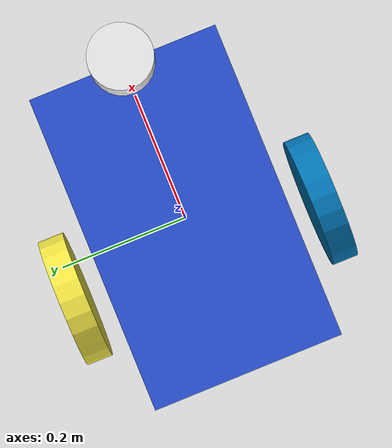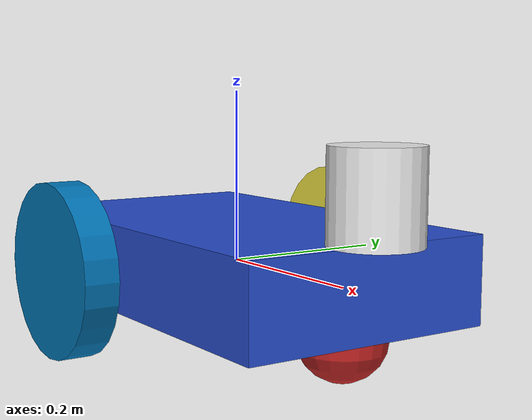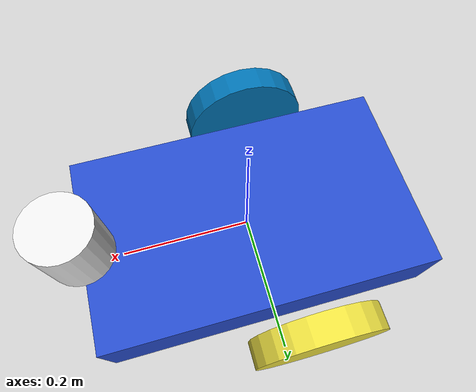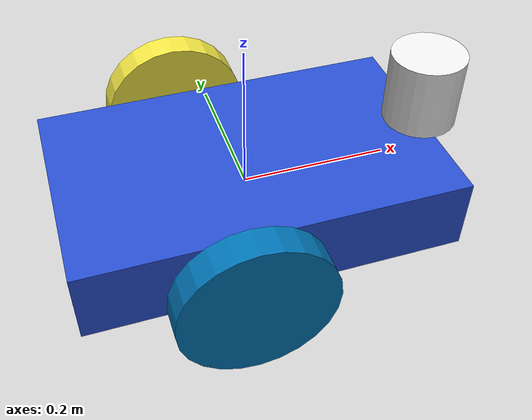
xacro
<?xml version="1.0" ?>
<robot name="robot" xmlns:xacro="http://www.ros.org/wiki/xacro">

  <xacro:include filename="$(find mobile_robot_gazebo)/urdf/materials.xacro" />
  <xacro:include filename="$(find mobile_robot_gazebo)/urdf/macros.xacro" />
  <!-- dummy link -->
<link name="base_footprint">
</link>

<!-- dummy joint -->
<joint name="root_joint" type="fixed">
	<parent link="base_footprint"/>
	<child  link="base_link"/>
	<origin xyz="0 0 0" rpy="0 0 0"/>
</joint>
<!-- import robot -->
  <xacro:include filename="chassis.xacro"></xacro:include>

<!-- gazebo -->
   <!-- gazebo coloring -->
<gazebo reference="base_link">
    <material>Gazebo/Red</material>
  </gazebo>

   <!-- gazebo control plug -->
  <gazebo>
    <plugin filename="libgazebo_ros_diff_drive.so" name="differential_drive_controller">
      <alwaysOn>true</alwaysOn>
      <updateRate>10</updateRate>
      <leftJoint>joint_left_wheel</leftJoint>
      <rightJoint>joint_right_wheel</rightJoint>
      <wheelSeparation>0.4</wheelSeparation>
      <wheelDiameter>0.2</wheelDiameter>
      <torque>0.1</torque>
      <commandTopic>cmd_vel</commandTopic>
      <odometryTopic>odom</odometryTopic>
      <odometryFrame>odom</odometryFrame>
      <robotBaseFrame>base_footprint</robotBaseFrame>
      <publishTf>1</publishTf>
      <publishOdomTf>true</publishOdomTf>
      <publishWheelTF>false</publishWheelTF>
      <broadcastTF>true</broadcastTF>
<publishWheelJointState>true</publishWheelJointState>

    </plugin>
  </gazebo>

<!-- laser sensor plugin -->
<gazebo reference="sensor_laser">
	<sensor type="ray" name="head_hokuyo_sensor">
		<pose>0 0 0 0 0 0</pose>
		<visualize>true</visualize>
		<update_rate>10</update_rate>
		<ray>
        <scan>
			<horizontal>
				<samples>720</samples>
				<resolution>1</resolution>
				<min_angle>-3.0</min_angle>
				<max_angle>3.0</max_angle>
			</horizontal>
		</scan>
		<range>
			<min>0.10</min>
			<max>10.0</max>
			<resolution>0.01</resolution>
		</range>
        <noise>
			<type>gaussian</type>
			<mean>0.0</mean>
			<stddev>0.01</stddev>
        </noise>
		</ray>
		<plugin name="gazebo_ros_head_hokuyo_controller" filename="libgazebo_ros_laser.so">
			<topicName>/scan</topicName>
			<frameName>sensor_laser</frameName>
		</plugin>
	</sensor>
</gazebo>

</robot>

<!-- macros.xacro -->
<robot xmlns:xacro="http://www.ros.org/wiki/xacro">
    <xacro:macro name="link_wheel" params="name">
        <link name="${name}">
            <inertial>
              <mass value="0.2"/>
              <origin rpy="0 1.5707 1.5707" xyz="0 0 0"/>
              <inertia ixx="0.000526666666667" ixy="0" ixz="0" iyy="0.000526666666667" iyz="0" izz="0.001"/>
</inertial>
            <collision name="link_right_wheel_collision">
              <origin rpy="0 1.5707 1.5707" xyz="0 0 0"/>
              <geometry>
                <cylinder length="0.04" radius="0.1"/>
              </geometry>
            </collision>
            <visual name="${name}_visual">
              <origin rpy="0 1.5707 1.5707" xyz="0 0 0"/>
              <geometry>
                <cylinder length="0.04" radius="0.1"/>
              </geometry>
            </visual>
        </link>
    </xacro:macro>

    <xacro:macro name="joint_wheel" params="name child origin_xyz">
      <joint name="${name}" type="continuous">
        <origin rpy="0 0 0" xyz="${origin_xyz}"/>
        <child link="${child}"/>
        <parent link="base_link"/>
        <axis rpy="0 0 0" xyz="0 1 0"/>
        <limit effort="10000" velocity="1000"/>
        <joint_properties damping="1.0" friction="1.0"/>
      </joint>
    </xacro:macro>

    <xacro:macro name="cylinder_inertia" params="mass r l">
      <inertia  ixx="${mass*(3*r*r+l*l)/12}" ixy = "0" ixz = "0"
                iyy="${mass*(3*r*r+l*l)/12}" iyz = "0"
                izz="${mass*(r*r)/2}" />
    </xacro:macro>
</robot>

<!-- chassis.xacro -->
<robot name="robot" xmlns:xacro="http://www.ros.org/wiki/xacro">

  <!-- base link with castor wheel -->
<link name="base_link">
    <inertial>
      <mass value="5"/>
      <origin rpy="0 0 0" xyz="0 0 0.1"/>
      <inertia ixx="0.0395416666667" ixy="0" ixz="0" iyy="0.106208333333" iyz="0" izz="0.106208333333"/>
    </inertial>

   <collision name="collision_chassis">
      <geometry>
        <box size="0.5 0.3 0.1"/>
      </geometry>
    </collision>
    <visual>
      <origin rpy="0 0 0" xyz="0 0 0"/>
      <geometry>
        <box size="0.5 0.3 0.1"/>
      </geometry>
      <material name="blue"/>
    </visual>
    <!-- caster front -->
    <collision name="caster_front_collision">
      <origin rpy=" 0 0 0" xyz="0.35 0 -0.05"/>
      <geometry>
        <sphere radius="0.05"/>
      </geometry>
      <surface>
        <friction>
          <ode>
            <mu>0</mu>
            <mu2>0</mu2>
            <slip1>1.0</slip1>
            <slip2>1.0</slip2>
          </ode>
        </friction>
      </surface>
    </collision>
    <visual name="caster_front_visual">
      <origin rpy=" 0 0 0" xyz="0.2 0 -0.05"/>
      <geometry>
        <sphere radius="0.05"/>
      </geometry>
    </visual>
  </link>

  <!-- sensor joint-->
  <joint name="joint_sensor_laser" type="fixed">
    <origin xyz="0.25 0 0.1" rpy="0 0 0"/>
    <parent link="base_link"/>
    <child link="sensor_laser"/>
  </joint>
  <!-- sensor link-->
  <link name="sensor_laser">
    <inertial>
      <origin xyz="0 0 0" rpy="0 0 0" />
      <mass value="1" />
      <xacro:cylinder_inertia mass="1" r="0.05" l="0.1" />
    </inertial>

    <visual>
      <origin xyz="0 0 0" rpy="0 0 0" />
      <geometry>
        <cylinder radius="0.05" length="0.1"/>
      </geometry>
      <material name="white" />
    </visual>

    <collision>
      <origin xyz="0 0 0" rpy="0 0 0"/>
      <geometry>
        <cylinder radius="0.05" length="0.1"/>
      </geometry>
    </collision>
  </link>

<!-- wheels -->

  <xacro:link_wheel name="link_right_wheel" />
  <xacro:joint_wheel name="joint_right_wheel" child="link_right_wheel" origin_xyz="-0.05 0.20 0" />

  <xacro:link_wheel name="link_left_wheel" />
  <xacro:joint_wheel name="joint_left_wheel" child="link_left_wheel" origin_xyz="-0.05 -0.20 0" />

</robot>
